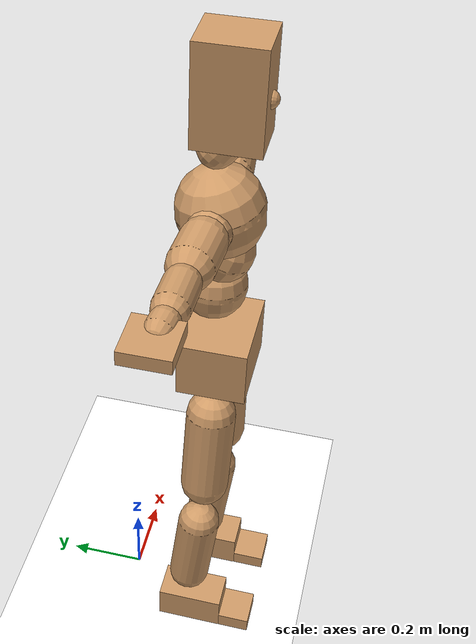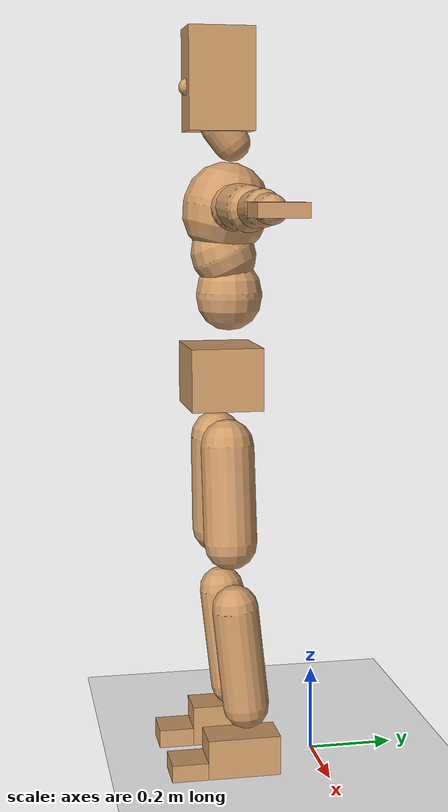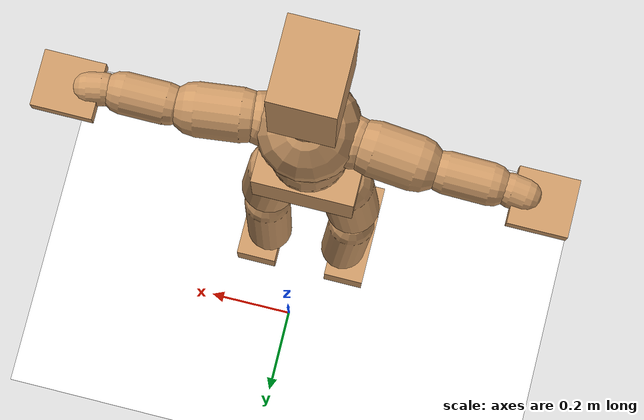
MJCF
<mujoco model="humanoid">
  <option integrator="implicitfast" />

  <visual>
    <global offwidth="1280" offheight="960" />
    <headlight active="1" ambient="0.34 0.34 0.34" diffuse="0.5 0.5 0.5" />
  </visual>

  <default>
    <joint damping="2" stiffness="2" armature="0.01" limited="true" solimplimit="0 .99 .01" />
    <geom condim="1" friction="0.7 0.005 0.0001" solimp=".99 .99 .003" solref="0.015 1" margin="0.001" rgba="0.8 0.6 .4 1" />
    <default class="smplcontact">
      <geom condim="3" friction="1. 0.005 0.0001" solref="0.015 1" solimp="0.98 0.98 0.001" priority="1" />
    </default>
    <default class="stiff_medium">
      <joint stiffness="10" />
    </default>
    <default class="stiff_medium_higher">
      <joint stiffness="50" />
    </default>
    <default class="stiff_high">
      <joint stiffness="100" />
    </default>
  </default>

  <asset>
    <texture type="skybox" builtin="gradient" rgb1="0.99 0.99 0.99" rgb2="0.608 0.828 0.892" width="100" />
    <texture builtin="flat" height="1278" mark="cross" markrgb="1 1 1" name="texgeom" random="0.01" rgb1="0.8 0.6 0.4" rgb2="0.8 0.6 0.4" type="cube" width="127" />
    <texture name="texplane" type="2d" builtin="checker" markrgb="1 1 1" rgb1="0.756 0.772 0.76" rgb2="0.6 0.6 0.6" width="100" height="100" />
    <material name="MatPlane" reflectance="0.5" texture="texplane" texrepeat="1 1" texuniform="true" />
    <material name="geom" texture="texgeom" texuniform="true" />
  </asset>

  <worldbody>
    <light name="tracking_light" pos="0 0 7" dir="0 0 -1" directional="true" cutoff="100" exponent="1" diffuse="1 1 1" specular="0.1 0.1 0.1" mode="trackcom" />
    <camera name="back" pos="0 3 2.4" xyaxes="-1 0 0 0 -1 2" mode="trackcom" />
    <camera name="side" pos="-3 0 2.4" xyaxes="0 -1 0 1 0 2" mode="trackcom" />
    <camera name="front_side" pos="-2.8 -2.8 0.8" xyaxes="0.5 -0.5 0 0.1 0.1 1" mode="trackcom" />
    <geom condim="3" name="floor" pos="0 0 0" rgba="1 1 1 1" size="100 100 .2" type="plane" material="MatPlane" />
    <body name="Pelvis" pos="-0.0018 -0.2233 0.9367" euler="90 0 0">
      <site name="Pelvis" size="0.01" />
      <freejoint name="Pelvis" />
      <geom type="box" pos="-0.0000 -0.0121 -0.0055" size="0.1069 0.0722 0.083" quat="1.0000 0.0000 0.0000 0.0000" density="3165.830099" name="Pelvis" />
      <body name="L_Hip" pos="0.0695 -0.0914 -0.0068">
        <joint name="L_Hip_x" type="hinge" pos="0 0 0" axis="1 0 0" stiffness="10.0" range="-160.0 22.92" class="stiff_medium" damping="14.999999999999998" armature="0.009999999999999998"/>
        <joint name="L_Hip_y" type="hinge" pos="0 0 0" axis="0 1 0" stiffness="10.0" range="-70.0 70.0" class="stiff_medium" damping="10.000000000000004" armature="0.010000000000000009"/>
        <joint name="L_Hip_z" type="hinge" pos="0 0 0" axis="0 0 1" stiffness="10.0" range="-28.65 90.0" class="stiff_medium" damping="9.999999999999998" armature="0.009999999999999998"/>
        <geom type="capsule" density="2040.816327" fromto="0.0069 -0.075 -0.0009 0.0274 -0.3002 -0.0036" size="0.0615" name="L_Hip" />
        <body name="L_Knee" pos="0.0343 -0.3752 -0.0045">
          <joint name="L_Knee_x" type="hinge" pos="0 0 0" axis="1 0 0" range="-5.16 171.89" damping="8.000000000000004" armature="0.010000000000000009" stiffness="2.0"/>
          <joint name="L_Knee_y" type="hinge" pos="0 0 0" axis="0 1 0" range="-4.58 6.88" damping="7.999999999999999" armature="0.009999999999999998" stiffness="2.0"/>
          <joint name="L_Knee_z" type="hinge" pos="0 0 0" axis="0 0 1" range="-6.88 4.58" damping="8.0" armature="0.010000000000000002" stiffness="2.0"/>
          <geom type="capsule" density="1234.567901" fromto="-0.0027 -0.0796 -0.0087 -0.0109 -0.3184 -0.035" size="0.0541" name="L_Knee" />
          <body name="L_Ankle" pos="-0.0136 -0.398 -0.0437">
            <joint name="L_Ankle_x" type="hinge" pos="0 0 0" axis="1 0 0" range="-45.84 45.84" class="stiff_medium" damping="6.000000000000024" armature="0.01000000000000008" stiffness="10.0"/>
            <joint name="L_Ankle_y" type="hinge" pos="0 0 0" axis="0 1 0" range="-74.48 22.92" class="stiff_medium" damping="3.0" armature="0.01" stiffness="10.0"/>
            <joint name="L_Ankle_z" type="hinge" pos="0 0 0" axis="0 0 1" range="-4.58 4.58" class="stiff_medium" damping="5.999999999999892" armature="0.00999999999999964" stiffness="10.0"/>
            <geom type="box" pos="0.0233 -0.0239 0.0242" size="0.0483 0.0464 0.085" quat="1.0000 0.0000 0.0000 0.0000" density="449.071558" name="L_Ankle" class="smplcontact" />
            <body name="L_Toe" pos="0.0264 -0.0558 0.1193">
              <joint name="L_Toe_x" type="hinge" pos="0 0 0" axis="1 0 0" range="-91.67 22.92" armature="0.00999999999999955" damping="1.999999999999955" stiffness="2.0"/>
              <joint name="L_Toe_y" type="hinge" pos="0 0 0" axis="0 1 0" range="-4.58 4.58" armature="0.009999999999999976" damping="1.9999999999999976" stiffness="2.0"/>
              <joint name="L_Toe_z" type="hinge" pos="0 0 0" axis="0 0 1" range="-4.58 4.58" armature="0.009999999999999436" damping="1.9999999999999436" stiffness="2.0"/>
              <geom type="box" pos="-0.003 0.0055 0.0248" size="0.0478 0.02 0.0496" quat="1.0000 0.0000 0.0000 0.0000" density="423.206892" name="L_Toe" class="smplcontact" />
            </body>
          </body>
        </body>
      </body>
      <body name="R_Hip" pos="-0.0677 -0.0905 -0.0043">
        <joint name="R_Hip_x" type="hinge" pos="0 0 0" axis="1 0 0" stiffness="10.0" range="-160.0 22.92" class="stiff_medium" damping="14.999999999999998" armature="0.009999999999999998"/>
        <joint name="R_Hip_y" type="hinge" pos="0 0 0" axis="0 1 0" stiffness="10.0" range="-70.0 70.0" class="stiff_medium" damping="10.000000000000004" armature="0.010000000000000009"/>
        <joint name="R_Hip_z" type="hinge" pos="0 0 0" axis="0 0 1" stiffness="10.0" range="-90.0 28.65" class="stiff_medium" damping="9.999999999999998" armature="0.009999999999999998"/>
        <geom type="capsule" density="2040.816327" fromto="-0.0077 -0.0765 -0.0018 -0.0306 -0.3061 -0.0071" size="0.0606" name="R_Hip" />
        <body name="R_Knee" pos="-0.0383 -0.3826 -0.0089">
          <joint name="R_Knee_x" type="hinge" pos="0 0 0" axis="1 0 0" range="-5.16 171.89" damping="8.000000000000004" armature="0.010000000000000009" stiffness="2.0"/>
          <joint name="R_Knee_y" type="hinge" pos="0 0 0" axis="0 1 0" range="-6.88 4.58" damping="7.999999999999999" armature="0.009999999999999998" stiffness="2.0"/>
          <joint name="R_Knee_z" type="hinge" pos="0 0 0" axis="0 0 1" range="-4.58 6.88" damping="8.0" armature="0.010000000000000002" stiffness="2.0"/>
          <geom type="capsule" density="1234.567901" fromto="0.0032 -0.0797 -0.0085 0.0126 -0.3187 -0.0338" size="0.0541" name="R_Knee" />
          <body name="R_Ankle" pos="0.0158 -0.3984 -0.0423">
            <joint name="R_Ankle_x" type="hinge" pos="0 0 0" axis="1 0 0" range="-45.84 45.84" class="stiff_medium" damping="6.000000000000024" armature="0.01000000000000008" stiffness="10.0"/>
            <joint name="R_Ankle_y" type="hinge" pos="0 0 0" axis="0 1 0" range="-22.92 74.48" class="stiff_medium" damping="3.0" armature="0.01" stiffness="10.0"/>
            <joint name="R_Ankle_z" type="hinge" pos="0 0 0" axis="0 0 1" range="-4.58 4.58" class="stiff_medium" damping="5.999999999999892" armature="0.00999999999999964" stiffness="10.0"/>
            <geom type="box" pos="-0.0212 -0.0174 0.0256" size="0.0483 0.0478 0.0865" quat="1.0000 0.0000 0.0000 0.0000" density="434.700981" name="R_Ankle" class="smplcontact" />
            <body name="R_Toe" pos="-0.0254 -0.0481 0.1233">
              <joint name="R_Toe_x" type="hinge" pos="0 0 0" axis="1 0 0" range="-91.67 22.92" armature="0.00999999999999955" damping="1.999999999999955" stiffness="2.0"/>
              <joint name="R_Toe_y" type="hinge" pos="0 0 0" axis="0 1 0" range="-4.58 4.58" armature="0.009999999999999976" damping="1.9999999999999976" stiffness="2.0"/>
              <joint name="R_Toe_z" type="hinge" pos="0 0 0" axis="0 0 1" range="-4.58 4.58" armature="0.009999999999999436" damping="1.9999999999999436" stiffness="2.0"/>
              <geom type="box" pos="0.0042 0.0045 0.0227" size="0.0479 0.0216 0.0493" quat="1.0000 0.0000 0.0000 0.0000" density="407.384095" name="R_Toe" class="smplcontact" />
            </body>
          </body>
        </body>
      </body>
      <body name="Torso" pos="-0.0025 0.109 -0.0267">
        <joint name="Torso_x" type="hinge" pos="0 0 0" axis="1 0 0" range="-25.78 57.3" class="stiff_medium" damping="12.83312864312064" armature="0.008389867755726702" stiffness="8.724237142857143"/>
        <joint name="Torso_y" type="hinge" pos="0 0 0" axis="0 1 0" range="-57.3 57.3" class="stiff_high" damping="9.641007877053584" armature="0.002615251180296176" stiffness="88.85287346938776"/>
        <joint name="Torso_z" type="hinge" pos="0 0 0" axis="0 0 1" range="-34.38 34.38" class="stiff_high" damping="15.25662184807281" armature="0.006404603814601959" stiffness="90.85827826086955"/>
        <geom type="capsule" density="2040.816327" fromto="0.0025 0.0608 0.0005 0.003 0.0743 0.0006" size="0.0769" name="Torso" />
        <body name="Spine" pos="0.0055 0.1352 0.0011">
          <joint name="Spine_x" type="hinge" pos="0 0 0" axis="1 0 0" stiffness="8.524132708333333" range="-25.78 57.3" class="stiff_medium" damping="12.593328186154574" armature="0.008268911088118518"/>
          <joint name="Spine_y" type="hinge" pos="0 0 0" axis="0 1 0" stiffness="8.372724772727274" range="-57.3 57.3" class="stiff_high" damping="3.7058359647278705" armature="0.002562864197858745"/>
          <joint name="Spine_z" type="hinge" pos="0 0 0" axis="0 0 1" stiffness="17.091765581395343" range="-34.38 34.38" class="stiff_high" damping="7.912330782724078" armature="0.005087324565503501"/>
          <geom type="capsule" density="2040.816327" fromto="0.0007 0.0238 0.0114 0.0008 0.0291 0.014" size="0.0755" name="Spine" />
          <body name="Chest" pos="0.0015 0.0529 0.0254">
            <joint name="Chest_x" type="hinge" pos="0 0 0" axis="1 0 0" stiffness="8.200278372093024" range="-25.78 57.3" class="stiff_medium" damping="12.319816615498858" armature="0.00822616417814673"/>
            <joint name="Chest_y" type="hinge" pos="0 0 0" axis="0 1 0" stiffness="6.66116392857143" range="-57.3 57.3" class="stiff_high" damping="3.2862373670032503" armature="0.0025331899922285133"/>
            <joint name="Chest_z" type="hinge" pos="0 0 0" axis="0 0 1" stiffness="16.64932651162791" range="-34.38 34.38" class="stiff_high" damping="7.3605142625327895" armature="0.004519466278837101"/>
            <geom type="capsule" density="2040.816327" fromto="-0.0009 0.0682 -0.0173 -0.001 0.0833 -0.0212" size="0.1002" name="Chest" />
            <body name="Neck" pos="-0.0028 0.2139 -0.0429">
              <joint name="Neck_x" type="hinge" pos="0 0 0" axis="1 0 0" range="-28.65 57.3" class="stiff_medium_higher" damping="10.000000000000002" armature="0.010000000000000005" stiffness="50.0"/>
              <joint name="Neck_y" type="hinge" pos="0 0 0" axis="0 1 0" range="-40.11 40.11" class="stiff_medium_higher" damping="10.0" armature="0.01" stiffness="50.0"/>
              <joint name="Neck_z" type="hinge" pos="0 0 0" axis="0 0 1" range="-40.11 40.11" class="stiff_medium_higher" damping="9.999999999999996" armature="0.009999999999999992" stiffness="50.0"/>
              <geom type="capsule" density="1000" fromto="0.001 0.013 0.0103 0.0041 0.052 0.0411" size="0.0436" name="Neck" />
              <body name="Head" pos="0.0052 0.065 0.0513">
                <joint name="Head_x" type="hinge" pos="0 0 0" axis="1 0 0" range="-28.65 57.3" class="stiff_medium_higher" damping="1.9999999999999982" armature="0.009999999999999983" stiffness="50.0"/>
                <joint name="Head_y" type="hinge" pos="0 0 0" axis="0 1 0" range="-40.11 40.11" class="stiff_medium_higher" damping="1.9999999999999998" armature="0.009999999999999998" stiffness="50.0"/>
                <joint name="Head_z" type="hinge" pos="0 0 0" axis="0 0 1" range="-40.11 40.11" class="stiff_medium_higher" damping="1.9999999999999987" armature="0.009999999999999988" stiffness="50.0"/>
                <geom type="box" pos="-0.0042 0.0876 -0.0116" size="0.0606 0.1154 0.076" quat="1.0000 0.0000 0.0000 0.0000" density="1018.069894" name="Head" />
                <geom type="capsule" name="nose" size="0.02 0.01" pos="0 0.07 0.05" quat="1 0 0 0" mass="0" contype="0" conaffinity="0" />
              </body>
            </body>
            <body name="L_Thorax" pos="0.04334 0.066935 -0.018755">
              <joint name="L_Thorax_x" type="hinge" pos="0 0 0" axis="1 0 0" range="-10.89 4.58" class="stiff_medium_higher" damping="8.43470362156282" armature="0.004456108006307155" stiffness="19.956940306122444"/>
              <joint name="L_Thorax_y" type="hinge" pos="0 0 0" axis="0 1 0" range="-28.65 17.19" class="stiff_medium_higher" damping="6.022763730189365" armature="0.0023084620474975955" stiffness="19.641693367346935"/>
              <joint name="L_Thorax_z" type="hinge" pos="0 0 0" axis="0 0 1" range="-31.51 40.11" class="stiff_medium_higher" damping="6.020659652326865" armature="0.002306440254549509" stiffness="19.64517755102041"/>
              <geom type="capsule" density="1000" fromto="0.01001 0.003355 -0.00099 0.04004 0.01342 -0.003905" size="0.0521" name="L_Thorax" />
              <body name="L_Shoulder" pos="0.05005 0.016775 -0.004895">
                <joint name="L_Shoulder_x" type="hinge" pos="0 0 0" axis="1 0 0" range="-97.4 97.4" class="stiff_medium" damping="2.750732619270362" armature="0.005207580254125643" stiffness="4.036066215805471"/>
                <joint name="L_Shoulder_y" type="hinge" pos="0 0 0" axis="0 1 0" range="-108.86 80.21" class="stiff_medium" damping="1.8298767221096353" armature="0.00235368225666454" stiffness="3.9517852040816326"/>
                <joint name="L_Shoulder_z" type="hinge" pos="0 0 0" axis="0 0 1" range="-97.4 85.94" class="stiff_medium" damping="1.829909535734246" armature="0.00235074892225839" stiffness="3.9568582653061224"/>
                <geom type="capsule" density="1000" fromto="0.028545 -0.00143 -0.003025 0.114235 -0.00561 -0.0121" size="0.0517" name="L_Shoulder" />
                <body name="L_Elbow" pos="0.14278 -0.00704 -0.015125">
                  <joint name="L_Elbow_x" type="hinge" pos="0 0 0" axis="1 0 0" range="-17.19 4.58" damping="2.6383809861162404" armature="0.006602890217626993" stiffness="0.8433948163265306"/>
                  <joint name="L_Elbow_y" type="hinge" pos="0 0 0" axis="0 1 0" range="-180.0 17.19" damping="1.6493311800762023" armature="0.0025828362461048147" stiffness="0.842575551020408"/>
                  <joint name="L_Elbow_z" type="hinge" pos="0 0 0" axis="0 0 1" range="-100.84 4.58" damping="1.6457692537144104" armature="0.00256744538108371" stiffness="0.8439693265306122"/>
                  <geom type="capsule" density="1000" fromto="0.02739 0.00099 -0.00011 0.10967 0.00396 -0.000495" size="0.0405" name="L_Elbow" />
                  <body name="L_Wrist" pos="0.13706 0.00495 -0.00066">
                    <joint name="L_Wrist_x" type="hinge" pos="0 0 0" axis="1 0 0" range="-180.0 22.92" armature="0.007461834395238982" damping="1.227949420458757" stiffness="1.0103814285714288"/>
                    <joint name="L_Wrist_y" type="hinge" pos="0 0 0" axis="0 1 0" range="-17.19 17.19" armature="0.00366491561661277" damping="0.8549575346764126" stiffness="0.9972294897959184"/>
                    <joint name="L_Wrist_z" type="hinge" pos="0 0 0" axis="0 0 1" range="-22.92 22.92" armature="0.003441422269276162" damping="0.8306797080467442" stiffness="1.002534306122449"/>
                    <geom type="capsule" density="1000" fromto="0.00924 -0.00088 -0.00165 0.03696 -0.003575 -0.0066" size="0.0318" name="L_Wrist" class="smplcontact" />
                    <body name="L_Hand" pos="0.0462 -0.00451 -0.008195">
                      <joint name="L_Hand_x" type="hinge" pos="0 0 0" axis="1 0 0" range="-17.19 17.19" armature="0.009696126030368846" damping="1.4605299472044884" stiffness="1.0999999999999999"/>
                      <joint name="L_Hand_y" type="hinge" pos="0 0 0" axis="0 1 0" range="-51.57 51.57" armature="0.006325063576496682" damping="1.1796245109479837" stiffness="1.0999999999999999"/>
                      <joint name="L_Hand_z" type="hinge" pos="0 0 0" axis="0 0 1" range="-91.67 91.67" armature="0.005426460820316557" damping="1.0926213344382592" stiffness="1.0999999999999999"/>
                      <geom type="box" pos="0.027115 0.00055 -0.00319" size="0.0585 0.0158 0.0538" quat="1.0000 0.0000 0.0000 0.0000" density="400.552564" name="L_Hand" class="smplcontact" />
                    </body>
                  </body>
                </body>
              </body>
            </body>
            <body name="R_Thorax" pos="-0.04499 0.06534 -0.02123">
              <joint name="R_Thorax_x" type="hinge" pos="0 0 0" axis="1 0 0" range="-10.89 4.58" class="stiff_medium_higher" damping="8.43470362156282" armature="0.004456108006307155" stiffness="19.956940306122444"/>
              <joint name="R_Thorax_y" type="hinge" pos="0 0 0" axis="0 1 0" range="-17.19 28.65" class="stiff_medium_higher" damping="6.022763730189365" armature="0.0023084620474975955" stiffness="19.641693367346935"/>
              <joint name="R_Thorax_z" type="hinge" pos="0 0 0" axis="0 0 1" range="-40.11 31.51" class="stiff_medium_higher" damping="6.020659652326865" armature="0.002306440254549509" stiffness="19.64517755102041"/>
              <geom type="capsule" density="1000" fromto="-0.01056 0.003575 -0.00099 -0.04224 0.0143 -0.004015" size="0.0511" name="R_Thorax" />
              <body name="R_Shoulder" pos="-0.0528 0.01793 -0.005005">
                <joint name="R_Shoulder_x" type="hinge" pos="0 0 0" axis="1 0 0" range="-97.4 97.4" class="stiff_medium" damping="2.750732619270362" armature="0.005207580254125643" stiffness="4.036066215805471"/>
                <joint name="R_Shoulder_y" type="hinge" pos="0 0 0" axis="0 1 0" range="-80.21 108.86" class="stiff_medium" damping="1.8298767221096353" armature="0.00235368225666454" stiffness="3.9517852040816326"/>
                <joint name="R_Shoulder_z" type="hinge" pos="0 0 0" axis="0 0 1" range="-85.94 97.4" class="stiff_medium" damping="1.829909535734246" armature="0.00235074892225839" stiffness="3.9568582653061224"/>
                <geom type="capsule" density="1000" fromto="-0.027885 -0.001485 -0.002365 -0.11165 -0.005885 -0.009405" size="0.0531" name="R_Shoulder" />
                <body name="R_Elbow" pos="-0.139535 -0.007315 -0.01177">
                  <joint name="R_Elbow_x" type="hinge" pos="0 0 0" axis="1 0 0" range="-17.19 4.58" damping="2.6383809861162404" armature="0.006602890217626993" stiffness="0.8433948163265306"/>
                  <joint name="R_Elbow_y" type="hinge" pos="0 0 0" axis="0 1 0" range="-17.19 180.0" damping="1.6493311800762023" armature="0.0025828362461048147" stiffness="0.842575551020408"/>
                  <joint name="R_Elbow_z" type="hinge" pos="0 0 0" axis="0 0 1" range="-4.58 100.84" damping="1.6457692537144104" armature="0.00256744538108371" stiffness="0.8439693265306122"/>
                  <geom type="capsule" density="1000" fromto="-0.028105 0.00088 -0.000605 -0.11231 0.00341 -0.00242" size="0.0408" name="R_Elbow" />
                  <body name="R_Wrist" pos="-0.140415 0.00429 -0.00308">
                    <joint name="R_Wrist_x" type="hinge" pos="0 0 0" axis="1 0 0" range="-180.0 22.92" armature="0.007461834395238982" damping="1.227949420458757" stiffness="1.0103814285714288"/>
                    <joint name="R_Wrist_y" type="hinge" pos="0 0 0" axis="0 1 0" range="-17.19 17.19" armature="0.00366491561661277" damping="0.8549575346764126" stiffness="0.9972294897959184"/>
                    <joint name="R_Wrist_z" type="hinge" pos="0 0 0" axis="0 0 1" range="-22.92 22.92" armature="0.003441422269276162" damping="0.8306797080467442" stiffness="1.002534306122449"/>
                    <geom type="capsule" density="1000" fromto="-0.009295 -0.00066 -0.001155 -0.037235 -0.002695 -0.004565" size="0.0326" name="R_Wrist" class="smplcontact" />
                    <body name="R_Hand" pos="-0.04653 -0.003355 -0.005665">
                      <joint name="R_Hand_x" type="hinge" pos="0 0 0" axis="1 0 0" range="-17.19 17.19" armature="0.009696126030368846" damping="1.4605299472044884" stiffness="1.0999999999999999"/>
                      <joint name="R_Hand_y" type="hinge" pos="0 0 0" axis="0 1 0" range="-51.57 51.57" armature="0.006325063576496682" damping="1.1796245109479837" stiffness="1.0999999999999999"/>
                      <joint name="R_Hand_z" type="hinge" pos="0 0 0" axis="0 0 1" range="-91.67 91.67" armature="0.005426460820316557" damping="1.0926213344382592" stiffness="1.0999999999999999"/>
                      <geom type="box" pos="-0.02541 -0.000495 -0.004345" size="0.0569 0.0164 0.0546" quat="1.0000 0.0000 0.0000 0.0000" density="403.679611" name="R_Hand" class="smplcontact" />
                    </body>
                  </body>
                </body>
              </body>
            </body>
          </body>
        </body>
      </body>
    </body>
  </worldbody>
  <actuator>
    <general name="L_Hip_x" joint="L_Hip_x" biastype="affine" gainprm="287.33006409732246" biasprm="-215.3247604770444 -180.0 -1.9999999999999998" ctrllimited="true" ctrlrange="-1 1" forcerange="-360.0 360.0" />
    <general name="L_Hip_y" joint="L_Hip_y" biastype="affine" gainprm="219.9114857512855" biasprm="0.0 -180.0 -2.000000000000001" ctrllimited="true" ctrlrange="-1 1" forcerange="-360.0 360.0" />
    <general name="L_Hip_z" joint="L_Hip_z" biastype="affine" gainprm="186.3749841742145" biasprm="96.3683546488669 -180.0 -1.9999999999999998" ctrllimited="true" ctrlrange="-1 1" forcerange="-360.0 360.0" />
    <general name="L_Knee_x" joint="L_Knee_x" biastype="affine" gainprm="278.10948965903646" biasprm="261.8988715665131 -180.0 -2.000000000000001" ctrllimited="true" ctrlrange="-1 1" forcerange="-360.0 360.0" />
    <general name="L_Knee_y" joint="L_Knee_y" biastype="affine" gainprm="18.001325905069514" biasprm="3.612831551628262 -180.0 -1.9999999999999998" ctrllimited="true" ctrlrange="-1 1" forcerange="-360.0 360.0" />
    <general name="L_Knee_z" joint="L_Knee_z" biastype="affine" gainprm="18.001325905069514" biasprm="-3.612831551628262 -180.0 -2.0" ctrllimited="true" ctrlrange="-1 1" forcerange="-360.0 360.0" />
    <general name="L_Ankle_x" joint="L_Ankle_x" biastype="affine" gainprm="72.00530362027807" biasprm="0.0 -90.0 -2.000000000000008" ctrllimited="true" ctrlrange="-1 1" forcerange="-180.0 180.0" />
    <general name="L_Ankle_y" joint="L_Ankle_y" biastype="affine" gainprm="76.49778111491148" biasprm="-40.49512930477244 -90.0 -2.0" ctrllimited="true" ctrlrange="-1 1" forcerange="-180.0 180.0" />
    <general name="L_Ankle_z" joint="L_Ankle_z" biastype="affine" gainprm="7.1942471767206255" biasprm="0.0 -90.0 -1.9999999999999638" ctrllimited="true" ctrlrange="-1 1" forcerange="-180.0 180.0" />
    <general name="L_Toe_x" joint="L_Toe_x" biastype="affine" gainprm="71.99902043497087" biasprm="-43.19689898685965 -72.0 -0.7999999999999821" ctrllimited="true" ctrlrange="-1 1" forcerange="-144.0 144.0" />
    <general name="L_Toe_y" joint="L_Toe_y" biastype="affine" gainprm="5.755397741376501" biasprm="0.0 -72.0 -0.799999999999999" ctrllimited="true" ctrlrange="-1 1" forcerange="-144.0 144.0" />
    <general name="L_Toe_z" joint="L_Toe_z" biastype="affine" gainprm="5.755397741376501" biasprm="0.0 -72.0 -0.7999999999999775" ctrllimited="true" ctrlrange="-1 1" forcerange="-144.0 144.0" />
    <general name="R_Hip_x" joint="R_Hip_x" biastype="affine" gainprm="287.33006409732246" biasprm="-215.3247604770444 -180.0 -1.9999999999999998" ctrllimited="true" ctrlrange="-1 1" forcerange="-360.0 360.0" />
    <general name="R_Hip_y" joint="R_Hip_y" biastype="affine" gainprm="219.9114857512855" biasprm="0.0 -180.0 -2.000000000000001" ctrllimited="true" ctrlrange="-1 1" forcerange="-360.0 360.0" />
    <general name="R_Hip_z" joint="R_Hip_z" biastype="affine" gainprm="186.3749841742145" biasprm="-96.3683546488669 -180.0 -1.9999999999999998" ctrllimited="true" ctrlrange="-1 1" forcerange="-360.0 360.0" />
    <general name="R_Knee_x" joint="R_Knee_x" biastype="affine" gainprm="278.10948965903646" biasprm="261.8988715665131 -180.0 -2.000000000000001" ctrllimited="true" ctrlrange="-1 1" forcerange="-360.0 360.0" />
    <general name="R_Knee_y" joint="R_Knee_y" biastype="affine" gainprm="18.001325905069514" biasprm="-3.612831551628262 -180.0 -1.9999999999999998" ctrllimited="true" ctrlrange="-1 1" forcerange="-360.0 360.0" />
    <general name="R_Knee_z" joint="R_Knee_z" biastype="affine" gainprm="18.001325905069514" biasprm="3.612831551628262 -180.0 -2.0" ctrllimited="true" ctrlrange="-1 1" forcerange="-360.0 360.0" />
    <general name="R_Ankle_x" joint="R_Ankle_x" biastype="affine" gainprm="72.00530362027807" biasprm="0.0 -90.0 -2.000000000000008" ctrllimited="true" ctrlrange="-1 1" forcerange="-180.0 180.0" />
    <general name="R_Ankle_y" joint="R_Ankle_y" biastype="affine" gainprm="76.49778111491148" biasprm="40.49512930477244 -90.0 -2.0" ctrllimited="true" ctrlrange="-1 1" forcerange="-180.0 180.0" />
    <general name="R_Ankle_z" joint="R_Ankle_z" biastype="affine" gainprm="7.1942471767206255" biasprm="0.0 -90.0 -1.9999999999999638" ctrllimited="true" ctrlrange="-1 1" forcerange="-180.0 180.0" />
    <general name="R_Toe_x" joint="R_Toe_x" biastype="affine" gainprm="71.99902043497087" biasprm="-43.19689898685965 -72.0 -0.7999999999999821" ctrllimited="true" ctrlrange="-1 1" forcerange="-144.0 144.0" />
    <general name="R_Toe_y" joint="R_Toe_y" biastype="affine" gainprm="5.755397741376501" biasprm="0.0 -72.0 -0.799999999999999" ctrllimited="true" ctrlrange="-1 1" forcerange="-144.0 144.0" />
    <general name="R_Toe_z" joint="R_Toe_z" biastype="affine" gainprm="5.755397741376501" biasprm="0.0 -72.0 -0.7999999999999775" ctrllimited="true" ctrlrange="-1 1" forcerange="-144.0 144.0" />
    <general name="Torso_x" joint="Torso_x" biastype="affine" gainprm="151.80377221252243" biasprm="57.593342563056154 -209.38169142857143 -3.422167638165504" ctrllimited="true" ctrlrange="-1 1" forcerange="-314.07253714285713 314.07253714285713" />
    <general name="Torso_y" joint="Torso_y" biastype="affine" gainprm="213.26260438991383" biasprm="0.0 -213.24689632653062 -1.9282015754107167" ctrllimited="true" ctrlrange="-1 1" forcerange="-319.8703444897959 319.8703444897959" />
    <general name="Torso_z" joint="Torso_z" biastype="affine" gainprm="130.84555825179245" biasprm="0.0 -218.05986782608693 -3.0513243696145618" ctrllimited="true" ctrlrange="-1 1" forcerange="-327.0898017391304 327.0898017391304" />
    <general name="Spine_x" joint="Spine_x" biastype="affine" gainprm="148.32190812518058" biasprm="56.272346462514335 -204.579185 -3.35822084964122" ctrllimited="true" ctrlrange="-1 1" forcerange="-306.86877749999996 306.86877749999996" />
    <general name="Spine_y" joint="Spine_y" biastype="affine" gainprm="200.96019646308363" biasprm="0.0 -200.94539454545458 -1.8529179823639352" ctrllimited="true" ctrlrange="-1 1" forcerange="-301.41809181818184 301.41809181818184" />
    <general name="Spine_z" joint="Spine_z" biastype="affine" gainprm="123.06977700949903" biasprm="0.0 -205.10118697674412 -2.6374435942413594" ctrllimited="true" ctrlrange="-1 1" forcerange="-307.6517804651162 307.6517804651162" />
    <general name="Chest_x" joint="Chest_x" biastype="affine" gainprm="142.68676672729774" biasprm="54.13441125715483 -196.80668093023257 -3.285284430799696" ctrllimited="true" ctrlrange="-1 1" forcerange="-295.21002139534886 295.21002139534886" />
    <general name="Chest_y" joint="Chest_y" biastype="affine" gainprm="159.87971038041" biasprm="0.0 -159.8679342857143 -1.6431186835016252" ctrllimited="true" ctrlrange="-1 1" forcerange="-239.80190142857145 239.80190142857145" />
    <general name="Chest_z" joint="Chest_z" biastype="affine" gainprm="119.88398105429127" biasprm="0.0 -199.7919181395349 -2.4535047541775965" ctrllimited="true" ctrlrange="-1 1" forcerange="-299.68787720930237 299.68787720930237" />
    <general name="Neck_x" joint="Neck_x" biastype="affine" gainprm="27.00198885760427" biasprm="9.000662952534757 -36.0 -0.8000000000000003" ctrllimited="true" ctrlrange="-1 1" forcerange="-72.0 72.0" />
    <general name="Neck_y" joint="Neck_y" biastype="affine" gainprm="25.20185626709732" biasprm="0.0 -36.0 -0.8" ctrllimited="true" ctrlrange="-1 1" forcerange="-72.0 72.0" />
    <general name="Neck_z" joint="Neck_z" biastype="affine" gainprm="25.20185626709732" biasprm="0.0 -36.0 -0.7999999999999997" ctrllimited="true" ctrlrange="-1 1" forcerange="-72.0 72.0" />
    <general name="Head_x" joint="Head_x" biastype="affine" gainprm="18.001325905069514" biasprm="6.000441968356505 -24.0 -0.7999999999999994" ctrllimited="true" ctrlrange="-1 1" forcerange="-48.0 48.0" />
    <general name="Head_y" joint="Head_y" biastype="affine" gainprm="16.801237511398213" biasprm="0.0 -24.0 -0.7999999999999999" ctrllimited="true" ctrlrange="-1 1" forcerange="-48.0 48.0" />
    <general name="Head_z" joint="Head_z" biastype="affine" gainprm="16.801237511398213" biasprm="0.0 -24.0 -0.7999999999999995" ctrllimited="true" ctrlrange="-1 1" forcerange="-48.0 48.0" />
    <general name="L_Thorax_x" joint="L_Thorax_x" biastype="affine" gainprm="6.466106980153143" biasprm="-2.6374360080650514 -47.89665673469387 -0.6747762897250257" ctrllimited="true" ctrlrange="-1 1" forcerange="-95.79331346938774 95.79331346938774" />
    <general name="L_Thorax_y" joint="L_Thorax_y" biastype="affine" gainprm="18.857414593762904" biasprm="-4.714353648440726 -47.140064081632644 -0.48182109841514925" ctrllimited="true" ctrlrange="-1 1" forcerange="-94.28012816326529 94.28012816326529" />
    <general name="L_Thorax_z" joint="L_Thorax_z" biastype="affine" gainprm="29.46787972505706" biasprm="3.538449673771163 -47.14842612244898 -0.4816527721861492" ctrllimited="true" ctrlrange="-1 1" forcerange="-94.29685224489796 94.29685224489796" />
    <general name="L_Shoulder_x" joint="L_Shoulder_x" biastype="affine" gainprm="32.93334506047744" biasprm="0.0 -19.373117835866264 -0.7335286984720966" ctrllimited="true" ctrlrange="-1 1" forcerange="-38.74623567173253 38.74623567173253" />
    <general name="L_Shoulder_y" joint="L_Shoulder_y" biastype="affine" gainprm="31.297133640991394" biasprm="-4.74249155770034 -18.968568979591836 -0.4879671258959028" ctrllimited="true" ctrlrange="-1 1" forcerange="-37.93713795918367 37.93713795918367" />
    <general name="L_Shoulder_z" joint="L_Shoulder_z" biastype="affine" gainprm="30.387595059587213" biasprm="-1.8994318718384982 -18.992919673469387 -0.487975876195799" ctrllimited="true" ctrlrange="-1 1" forcerange="-37.985839346938775 37.985839346938775" />
    <general name="L_Elbow_x" joint="L_Elbow_x" biastype="affine" gainprm="5.768185641845626" biasprm="-3.3411493313584466 -30.3622133877551 -0.4221409577785985" ctrllimited="true" ctrlrange="-1 1" forcerange="-60.7244267755102 60.7244267755102" />
    <general name="L_Elbow_y" joint="L_Elbow_y" biastype="affine" gainprm="52.19676802931011" biasprm="-43.09628177317298 -30.33271983673469 -0.26389298881219236" ctrllimited="true" ctrlrange="-1 1" forcerange="-60.66543967346938 60.66543967346938" />
    <general name="L_Elbow_z" joint="L_Elbow_z" biastype="affine" gainprm="27.951141407994328" biasprm="-25.522451830141666 -30.382895755102037 -0.26332308059430565" ctrllimited="true" ctrlrange="-1 1" forcerange="-60.765791510204075 60.765791510204075" />
    <general name="L_Wrist_x" joint="L_Wrist_x" biastype="affine" gainprm="10.735167645580283" biasprm="-8.310073594361082 -6.062288571428573 -0.49117976818350284" ctrllimited="true" ctrlrange="-1 1" forcerange="-12.124577142857145 12.124577142857145" />
    <general name="L_Wrist_y" joint="L_Wrist_y" biastype="affine" gainprm="1.7951453047962525" biasprm="0.0 -5.9833769387755105 -0.34198301387056507" ctrllimited="true" ctrlrange="-1 1" forcerange="-11.966753877551021 11.966753877551021" />
    <general name="L_Wrist_z" joint="L_Wrist_z" biastype="affine" gainprm="2.4062595700697247" biasprm="0.0 -6.015205836734694 -0.3322718832186977" ctrllimited="true" ctrlrange="-1 1" forcerange="-12.030411673469388 12.030411673469388" />
    <general name="L_Hand_x" joint="L_Hand_x" biastype="affine" gainprm="1.9801458495576467" biasprm="0.0 -6.6 -0.5842119788817953" ctrllimited="true" ctrlrange="-1 1" forcerange="-13.2 13.2" />
    <general name="L_Hand_y" joint="L_Hand_y" biastype="affine" gainprm="5.940437548672939" biasprm="0.0 -6.6 -0.4718498043791935" ctrllimited="true" ctrlrange="-1 1" forcerange="-13.2 13.2" />
    <general name="L_Hand_z" joint="L_Hand_z" biastype="affine" gainprm="10.55962594700113" biasprm="0.0 -6.6 -0.43704853377530367" ctrllimited="true" ctrlrange="-1 1" forcerange="-13.2 13.2" />
    <general name="R_Thorax_x" joint="R_Thorax_x" biastype="affine" gainprm="6.466106980153143" biasprm="-2.6374360080650514 -47.89665673469387 -0.6747762897250257" ctrllimited="true" ctrlrange="-1 1" forcerange="-95.79331346938774 95.79331346938774" />
    <general name="R_Thorax_y" joint="R_Thorax_y" biastype="affine" gainprm="18.857414593762904" biasprm="4.714353648440723 -47.140064081632644 -0.48182109841514925" ctrllimited="true" ctrlrange="-1 1" forcerange="-94.28012816326529 94.28012816326529" />
    <general name="R_Thorax_z" joint="R_Thorax_z" biastype="affine" gainprm="29.46787972505706" biasprm="-3.538449673771163 -47.14842612244898 -0.4816527721861492" ctrllimited="true" ctrlrange="-1 1" forcerange="-94.29685224489796 94.29685224489796" />
    <general name="R_Shoulder_x" joint="R_Shoulder_x" biastype="affine" gainprm="32.93334506047744" biasprm="0.0 -19.373117835866264 -0.7335286984720966" ctrllimited="true" ctrlrange="-1 1" forcerange="-38.74623567173253 38.74623567173253" />
    <general name="R_Shoulder_y" joint="R_Shoulder_y" biastype="affine" gainprm="31.297133640991394" biasprm="4.74249155770034 -18.968568979591836 -0.4879671258959028" ctrllimited="true" ctrlrange="-1 1" forcerange="-37.93713795918367 37.93713795918367" />
    <general name="R_Shoulder_z" joint="R_Shoulder_z" biastype="affine" gainprm="30.387595059587213" biasprm="1.899431871838494 -18.992919673469387 -0.487975876195799" ctrllimited="true" ctrlrange="-1 1" forcerange="-37.985839346938775 37.985839346938775" />
    <general name="R_Elbow_x" joint="R_Elbow_x" biastype="affine" gainprm="5.768185641845626" biasprm="-3.3411493313584466 -30.3622133877551 -0.4221409577785985" ctrllimited="true" ctrlrange="-1 1" forcerange="-60.7244267755102 60.7244267755102" />
    <general name="R_Elbow_y" joint="R_Elbow_y" biastype="affine" gainprm="52.19676802931011" biasprm="43.09628177317298 -30.33271983673469 -0.26389298881219236" ctrllimited="true" ctrlrange="-1 1" forcerange="-60.66543967346938 60.66543967346938" />
    <general name="R_Elbow_z" joint="R_Elbow_z" biastype="affine" gainprm="27.951141407994328" biasprm="25.522451830141662 -30.382895755102037 -0.26332308059430565" ctrllimited="true" ctrlrange="-1 1" forcerange="-60.765791510204075 60.765791510204075" />
    <general name="R_Wrist_x" joint="R_Wrist_x" biastype="affine" gainprm="10.735167645580283" biasprm="-8.310073594361082 -6.062288571428573 -0.49117976818350284" ctrllimited="true" ctrlrange="-1 1" forcerange="-12.124577142857145 12.124577142857145" />
    <general name="R_Wrist_y" joint="R_Wrist_y" biastype="affine" gainprm="1.7951453047962525" biasprm="0.0 -5.9833769387755105 -0.34198301387056507" ctrllimited="true" ctrlrange="-1 1" forcerange="-11.966753877551021 11.966753877551021" />
    <general name="R_Wrist_z" joint="R_Wrist_z" biastype="affine" gainprm="2.4062595700697247" biasprm="0.0 -6.015205836734694 -0.3322718832186977" ctrllimited="true" ctrlrange="-1 1" forcerange="-12.030411673469388 12.030411673469388" />
    <general name="R_Hand_x" joint="R_Hand_x" biastype="affine" gainprm="1.9801458495576467" biasprm="0.0 -6.6 -0.5842119788817953" ctrllimited="true" ctrlrange="-1 1" forcerange="-13.2 13.2" />
    <general name="R_Hand_y" joint="R_Hand_y" biastype="affine" gainprm="5.940437548672939" biasprm="0.0 -6.6 -0.4718498043791935" ctrllimited="true" ctrlrange="-1 1" forcerange="-13.2 13.2" />
    <general name="R_Hand_z" joint="R_Hand_z" biastype="affine" gainprm="10.55962594700113" biasprm="0.0 -6.6 -0.43704853377530367" ctrllimited="true" ctrlrange="-1 1" forcerange="-13.2 13.2" />
  </actuator>
  <contact>
    <exclude body1="Torso" body2="Chest" />
    <exclude body1="Head" body2="Chest" />
    <exclude body1="R_Knee" body2="R_Toe" />
    <exclude body1="R_Knee" body2="L_Ankle" />
    <exclude body1="R_Knee" body2="L_Toe" />
    <exclude body1="L_Knee" body2="L_Toe" />
    <exclude body1="L_Knee" body2="R_Ankle" />
    <exclude body1="L_Knee" body2="R_Toe" />
    <exclude body1="L_Shoulder" body2="Chest" />
    <exclude body1="R_Shoulder" body2="Chest" />
  </contact>
  <sensor>
    <framelinvel name="sensor_Pelvis_framelinvel" objtype="xbody" objname="Pelvis" />
    <framelinvel name="sensor_L_Hip_framelinvel" objtype="xbody" objname="L_Hip" />
    <framelinvel name="sensor_L_Knee_framelinvel" objtype="xbody" objname="L_Knee" />
    <framelinvel name="sensor_L_Ankle_framelinvel" objtype="xbody" objname="L_Ankle" />
    <framelinvel name="sensor_L_Toe_framelinvel" objtype="xbody" objname="L_Toe" />
    <framelinvel name="sensor_R_Hip_framelinvel" objtype="xbody" objname="R_Hip" />
    <framelinvel name="sensor_R_Knee_framelinvel" objtype="xbody" objname="R_Knee" />
    <framelinvel name="sensor_R_Ankle_framelinvel" objtype="xbody" objname="R_Ankle" />
    <framelinvel name="sensor_R_Toe_framelinvel" objtype="xbody" objname="R_Toe" />
    <framelinvel name="sensor_Torso_framelinvel" objtype="xbody" objname="Torso" />
    <framelinvel name="sensor_Spine_framelinvel" objtype="xbody" objname="Spine" />
    <framelinvel name="sensor_Chest_framelinvel" objtype="xbody" objname="Chest" />
    <framelinvel name="sensor_Neck_framelinvel" objtype="xbody" objname="Neck" />
    <framelinvel name="sensor_Head_framelinvel" objtype="xbody" objname="Head" />
    <framelinvel name="sensor_L_Thorax_framelinvel" objtype="xbody" objname="L_Thorax" />
    <framelinvel name="sensor_L_Shoulder_framelinvel" objtype="xbody" objname="L_Shoulder" />
    <framelinvel name="sensor_L_Elbow_framelinvel" objtype="xbody" objname="L_Elbow" />
    <framelinvel name="sensor_L_Wrist_framelinvel" objtype="xbody" objname="L_Wrist" />
    <framelinvel name="sensor_L_Hand_framelinvel" objtype="xbody" objname="L_Hand" />
    <framelinvel name="sensor_R_Thorax_framelinvel" objtype="xbody" objname="R_Thorax" />
    <framelinvel name="sensor_R_Shoulder_framelinvel" objtype="xbody" objname="R_Shoulder" />
    <framelinvel name="sensor_R_Elbow_framelinvel" objtype="xbody" objname="R_Elbow" />
    <framelinvel name="sensor_R_Wrist_framelinvel" objtype="xbody" objname="R_Wrist" />
    <framelinvel name="sensor_R_Hand_framelinvel" objtype="xbody" objname="R_Hand" />
    <frameangvel name="sensor_Pelvis_frameangvel" objtype="xbody" objname="Pelvis" />
    <frameangvel name="sensor_L_Hip_frameangvel" objtype="xbody" objname="L_Hip" />
    <frameangvel name="sensor_L_Knee_frameangvel" objtype="xbody" objname="L_Knee" />
    <frameangvel name="sensor_L_Ankle_frameangvel" objtype="xbody" objname="L_Ankle" />
    <frameangvel name="sensor_L_Toe_frameangvel" objtype="xbody" objname="L_Toe" />
    <frameangvel name="sensor_R_Hip_frameangvel" objtype="xbody" objname="R_Hip" />
    <frameangvel name="sensor_R_Knee_frameangvel" objtype="xbody" objname="R_Knee" />
    <frameangvel name="sensor_R_Ankle_frameangvel" objtype="xbody" objname="R_Ankle" />
    <frameangvel name="sensor_R_Toe_frameangvel" objtype="xbody" objname="R_Toe" />
    <frameangvel name="sensor_Torso_frameangvel" objtype="xbody" objname="Torso" />
    <frameangvel name="sensor_Spine_frameangvel" objtype="xbody" objname="Spine" />
    <frameangvel name="sensor_Chest_frameangvel" objtype="xbody" objname="Chest" />
    <frameangvel name="sensor_Neck_frameangvel" objtype="xbody" objname="Neck" />
    <frameangvel name="sensor_Head_frameangvel" objtype="xbody" objname="Head" />
    <frameangvel name="sensor_L_Thorax_frameangvel" objtype="xbody" objname="L_Thorax" />
    <frameangvel name="sensor_L_Shoulder_frameangvel" objtype="xbody" objname="L_Shoulder" />
    <frameangvel name="sensor_L_Elbow_frameangvel" objtype="xbody" objname="L_Elbow" />
    <frameangvel name="sensor_L_Wrist_frameangvel" objtype="xbody" objname="L_Wrist" />
    <frameangvel name="sensor_L_Hand_frameangvel" objtype="xbody" objname="L_Hand" />
    <frameangvel name="sensor_R_Thorax_frameangvel" objtype="xbody" objname="R_Thorax" />
    <frameangvel name="sensor_R_Shoulder_frameangvel" objtype="xbody" objname="R_Shoulder" />
    <frameangvel name="sensor_R_Elbow_frameangvel" objtype="xbody" objname="R_Elbow" />
    <frameangvel name="sensor_R_Wrist_frameangvel" objtype="xbody" objname="R_Wrist" />
    <frameangvel name="sensor_R_Hand_frameangvel" objtype="xbody" objname="R_Hand" />
    <subtreelinvel name="Chest_subtreelinvel" body="Chest" />
    <gyro name="Pelvis_gyro" site="Pelvis" />
  </sensor>
</mujoco>
